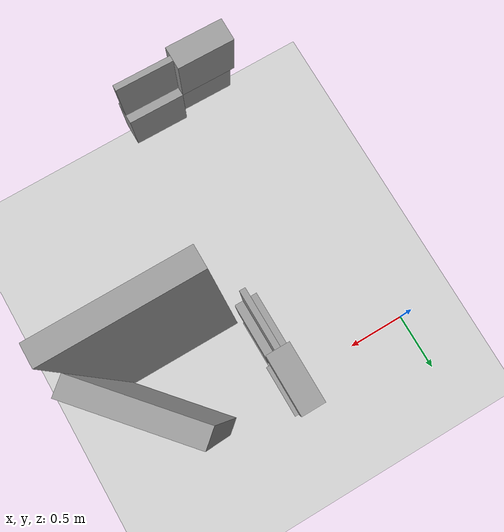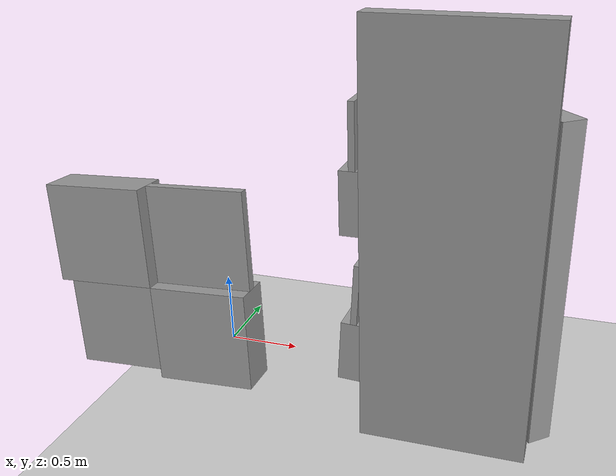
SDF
<sdf version="1.7">
 <world name="default">
  <model name="demo_clean">
   <static>1</static>
   <link name="Wall_21_clone_0_clone_0_clone_clone_clone_clone">
    <gravity>0</gravity>
    <collision name="Wall_21_Collision">
     <geometry><box><size>0.924919 0.15 1.96033</size></box></geometry>
     <pose>0 0 1.25 0 -0 0</pose>
     <surface>
      <friction>
       <ode><mu>1</mu><mu2>1</mu2><fdir1>0 0 0</fdir1><slip1>0</slip1><slip2>0</slip2></ode>
       <torsional>
        <coefficient>1</coefficient>
        <patch_radius>0</patch_radius>
        <surface_radius>0</surface_radius>
        <use_patch_radius>1</use_patch_radius>
        <ode><slip>0</slip></ode>
       </torsional>
      </friction>
      <bounce><restitution_coefficient>0</restitution_coefficient><threshold>1e+06</threshold></bounce>
      <contact>
       <collide_without_contact>0</collide_without_contact>
       <collide_without_contact_bitmask>1</collide_without_contact_bitmask>
       <collide_bitmask>1</collide_bitmask>
       <ode>
        <soft_cfm>0</soft_cfm>
        <soft_erp>0.2</soft_erp>
        <kp>1e+13</kp>
        <kd>1</kd>
        <max_vel>0.01</max_vel>
        <min_depth>0</min_depth>
       </ode>
       <bullet>
        <split_impulse>1</split_impulse>
        <split_impulse_penetration_threshold>-0.01</split_impulse_penetration_threshold>
        <soft_cfm>0</soft_cfm>
        <soft_erp>0.2</soft_erp>
        <kp>1e+13</kp>
        <kd>1</kd>
       </bullet>
      </contact>
     </surface>
    </collision>
    <visual name="Wall_21_Visual">
     <geometry><box><size>0.924919 0.15 1.96033</size></box></geometry>
     <material>
      <script><name>Gazebo/Grey</name><uri>file://media/materials/scripts/gazebo.material</uri></script>
      <ambient>1 1 1 1</ambient>
      <shader type="pixel"><normal_map>__default__</normal_map></shader>
      <diffuse>0.7 0.7 0.7 1</diffuse>
      <specular>0.01 0.01 0.01 1</specular>
      <emissive>0 0 0 1</emissive>
     </material>
     <pose>0 0 1.25 0 -0 0</pose>
    </visual>
    <inertial>
     <inertia><ixx>0</ixx><iyy>0</iyy><izz>0</izz><ixy>0</ixy><ixz>0</ixz><iyz>0</iyz></inertia>
     <mass>1</mass>
    </inertial>
    <pose>2.0073 -0.280742 -0.23202 0 -0 2.28452</pose>
   </link>
   <link name="Wall_28">
    <collision name="Wall_28_Collision">
     <geometry><box><size>1 0.15 2.5</size></box></geometry>
     <pose>0 0 1.25 0 -0 0</pose>
     <surface>
      <friction>
       <ode><mu>1</mu><mu2>1</mu2><fdir1>0 0 0</fdir1><slip1>0</slip1><slip2>0</slip2></ode>
       <torsional>
        <coefficient>1</coefficient>
        <patch_radius>0</patch_radius>
        <surface_radius>0</surface_radius>
        <use_patch_radius>1</use_patch_radius>
        <ode><slip>0</slip></ode>
       </torsional>
      </friction>
      <bounce><restitution_coefficient>0</restitution_coefficient><threshold>1e+06</threshold></bounce>
      <contact>
       <collide_without_contact>0</collide_without_contact>
       <collide_without_contact_bitmask>1</collide_without_contact_bitmask>
       <collide_bitmask>1</collide_bitmask>
       <ode>
        <soft_cfm>0</soft_cfm>
        <soft_erp>0.2</soft_erp>
        <kp>1e+13</kp>
        <kd>1</kd>
        <max_vel>0.01</max_vel>
        <min_depth>0</min_depth>
       </ode>
       <bullet>
        <split_impulse>1</split_impulse>
        <split_impulse_penetration_threshold>-0.01</split_impulse_penetration_threshold>
        <soft_cfm>0</soft_cfm>
        <soft_erp>0.2</soft_erp>
        <kp>1e+13</kp>
        <kd>1</kd>
       </bullet>
      </contact>
     </surface>
    </collision>
    <visual name="Wall_28_Visual">
     <geometry><box><size>1 0.15 2.5</size></box></geometry>
     <material>
      <script><name>Gazebo/Grey</name><uri>file://media/materials/scripts/gazebo.material</uri></script>
      <ambient>1 1 1 1</ambient>
      <shader type="pixel"><normal_map>default</normal_map></shader>
     </material>
     <pose>0 0 1.25 0 -0 0</pose>
    </visual>
    <pose>1.74215 -0.745235 0 0 -0 0</pose>
   </link>
  </model>
  <model name="ground_plane">
   <static>1</static>
   <link name="link">
    <collision name="collision">
     <geometry><plane><normal>0 0 1</normal><size>100 100</size></plane></geometry>
     <surface>
      <contact><collide_bitmask>65535</collide_bitmask></contact>
      <friction><ode><mu>100</mu><mu2>50</mu2></ode></friction>
     </surface>
    </collision>
    <visual name="visual">
     <cast_shadows>0</cast_shadows>
     <geometry><plane><normal>0 0 1</normal><size>100 100</size></plane></geometry>
     <material>
      <script><uri>file://media/materials/scripts/gazebo.material</uri><name>Gazebo/Grey</name></script>
     </material>
    </visual>
   </link>
  </model>
  <model name="wall_slate_74">
   <static>1</static>
   <link name="link_0">
    <inertial><mass>1</mass></inertial>
    <gravity>0</gravity>
    <visual name="visual">
     <pose>0 0.2 0.2 0 -0 0</pose>
     <geometry><box><size>0.16 0.4 0.4</size></box></geometry>
     <material>
      <lighting>1</lighting>
      <script><uri>file://media/materials/scripts/gazebo.material</uri><name>Gazebo/Grey</name></script>
      <shader type="pixel"><normal_map>__default__</normal_map></shader>
      <ambient>0.3 0.3 0.3 1</ambient>
      <diffuse>0.7 0.7 0.7 1</diffuse>
      <specular>0.01 0.01 0.01 1</specular>
      <emissive>0 0 0 1</emissive>
     </material>
    </visual>
    <visual name="ModelPreview_0::link_0::visual_1">
     <pose>0 0.2 -0.2 0 -0 0</pose>
     <geometry><box><size>0.04 0.4 0.4</size></box></geometry>
     <material>
      <lighting>1</lighting>
      <script><uri>file://media/materials/scripts/gazebo.material</uri><name>Gazebo/Grey</name></script>
      <shader type="pixel"><normal_map>__default__</normal_map></shader>
      <ambient>0.3 0.3 0.3 1</ambient>
      <diffuse>0.7 0.7 0.7 1</diffuse>
      <specular>0.01 0.01 0.01 1</specular>
      <emissive>0 0 0 1</emissive>
     </material>
    </visual>
    <visual name="ModelPreview_0::link_0::visual_2">
     <pose>0 -0.2 0.2 0 -0 0</pose>
     <geometry><box><size>0.04 0.4 0.4</size></box></geometry>
     <material>
      <lighting>1</lighting>
      <script><uri>file://media/materials/scripts/gazebo.material</uri><name>Gazebo/Grey</name></script>
      <shader type="pixel"><normal_map>__default__</normal_map></shader>
      <ambient>0.3 0.3 0.3 1</ambient>
      <diffuse>0.7 0.7 0.7 1</diffuse>
      <specular>0.01 0.01 0.01 1</specular>
      <emissive>0 0 0 1</emissive>
     </material>
    </visual>
    <visual name="ModelPreview_0::link_0::visual_3">
     <pose>0 -0.2 -0.2 0 -0 0</pose>
     <geometry><box><size>0.16 0.4 0.4</size></box></geometry>
     <material>
      <lighting>1</lighting>
      <script><uri>file://media/materials/scripts/gazebo.material</uri><name>Gazebo/Grey</name></script>
      <shader type="pixel"><normal_map>__default__</normal_map></shader>
      <ambient>0.3 0.3 0.3 1</ambient>
      <diffuse>0.7 0.7 0.7 1</diffuse>
      <specular>0.01 0.01 0.01 1</specular>
      <emissive>0 0 0 1</emissive>
     </material>
    </visual>
    <collision name="collision_2">
     <pose>0 -0.2 0.2 0 -0 0</pose>
     <geometry><box><size>0.04 0.4 0.4</size></box></geometry>
     <surface>
      <friction>
       <ode><mu>1</mu><mu2>1</mu2><fdir1>0 0 0</fdir1><slip1>0</slip1><slip2>0</slip2></ode>
       <torsional>
        <coefficient>1</coefficient>
        <patch_radius>0</patch_radius>
        <surface_radius>0</surface_radius>
        <use_patch_radius>1</use_patch_radius>
        <ode><slip>0</slip></ode>
       </torsional>
      </friction>
      <bounce><restitution_coefficient>0</restitution_coefficient><threshold>1e+06</threshold></bounce>
      <contact>
       <collide_without_contact>0</collide_without_contact>
       <collide_without_contact_bitmask>1</collide_without_contact_bitmask>
       <collide_bitmask>1</collide_bitmask>
       <ode>
        <soft_cfm>0</soft_cfm>
        <soft_erp>0.2</soft_erp>
        <kp>1e+13</kp>
        <kd>1</kd>
        <max_vel>0.01</max_vel>
        <min_depth>0</min_depth>
       </ode>
       <bullet>
        <split_impulse>1</split_impulse>
        <split_impulse_penetration_threshold>-0.01</split_impulse_penetration_threshold>
        <soft_cfm>0</soft_cfm>
        <soft_erp>0.2</soft_erp>
        <kp>1e+13</kp>
        <kd>1</kd>
       </bullet>
      </contact>
     </surface>
    </collision>
    <collision name="collision_1">
     <pose>0 0.2 -0.2 0 -0 0</pose>
     <geometry><box><size>0.04 0.4 0.4</size></box></geometry>
     <surface>
      <friction>
       <ode><mu>1</mu><mu2>1</mu2><fdir1>0 0 0</fdir1><slip1>0</slip1><slip2>0</slip2></ode>
       <torsional>
        <coefficient>1</coefficient>
        <patch_radius>0</patch_radius>
        <surface_radius>0</surface_radius>
        <use_patch_radius>1</use_patch_radius>
        <ode><slip>0</slip></ode>
       </torsional>
      </friction>
      <bounce><restitution_coefficient>0</restitution_coefficient><threshold>1e+06</threshold></bounce>
      <contact>
       <collide_without_contact>0</collide_without_contact>
       <collide_without_contact_bitmask>1</collide_without_contact_bitmask>
       <collide_bitmask>1</collide_bitmask>
       <ode>
        <soft_cfm>0</soft_cfm>
        <soft_erp>0.2</soft_erp>
        <kp>1e+13</kp>
        <kd>1</kd>
        <max_vel>0.01</max_vel>
        <min_depth>0</min_depth>
       </ode>
       <bullet>
        <split_impulse>1</split_impulse>
        <split_impulse_penetration_threshold>-0.01</split_impulse_penetration_threshold>
        <soft_cfm>0</soft_cfm>
        <soft_erp>0.2</soft_erp>
        <kp>1e+13</kp>
        <kd>1</kd>
       </bullet>
      </contact>
     </surface>
    </collision>
    <collision name="collision_4">
     <pose>0 0.2 0.2 0 -0 0</pose>
     <geometry><box><size>0.16 0.4 0.4</size></box></geometry>
     <surface>
      <friction>
       <ode><mu>1</mu><mu2>1</mu2><fdir1>0 0 0</fdir1><slip1>0</slip1><slip2>0</slip2></ode>
       <torsional>
        <coefficient>1</coefficient>
        <patch_radius>0</patch_radius>
        <surface_radius>0</surface_radius>
        <use_patch_radius>1</use_patch_radius>
        <ode><slip>0</slip></ode>
       </torsional>
      </friction>
      <bounce><restitution_coefficient>0</restitution_coefficient><threshold>1e+06</threshold></bounce>
      <contact>
       <collide_without_contact>0</collide_without_contact>
       <collide_without_contact_bitmask>1</collide_without_contact_bitmask>
       <collide_bitmask>1</collide_bitmask>
       <ode>
        <soft_cfm>0</soft_cfm>
        <soft_erp>0.2</soft_erp>
        <kp>1e+13</kp>
        <kd>1</kd>
        <max_vel>0.01</max_vel>
        <min_depth>0</min_depth>
       </ode>
       <bullet>
        <split_impulse>1</split_impulse>
        <split_impulse_penetration_threshold>-0.01</split_impulse_penetration_threshold>
        <soft_cfm>0</soft_cfm>
        <soft_erp>0.2</soft_erp>
        <kp>1e+13</kp>
        <kd>1</kd>
       </bullet>
      </contact>
     </surface>
    </collision>
    <collision name="collision_3">
     <pose>0 -0.2 -0.2 0 -0 0</pose>
     <geometry><box><size>0.16 0.4 0.4</size></box></geometry>
     <surface>
      <friction>
       <ode><mu>1</mu><mu2>1</mu2><fdir1>0 0 0</fdir1><slip1>0</slip1><slip2>0</slip2></ode>
       <torsional>
        <coefficient>1</coefficient>
        <patch_radius>0</patch_radius>
        <surface_radius>0</surface_radius>
        <use_patch_radius>1</use_patch_radius>
        <ode><slip>0</slip></ode>
       </torsional>
      </friction>
      <bounce><restitution_coefficient>0</restitution_coefficient><threshold>1e+06</threshold></bounce>
      <contact>
       <collide_without_contact>0</collide_without_contact>
       <collide_without_contact_bitmask>1</collide_without_contact_bitmask>
       <collide_bitmask>1</collide_bitmask>
       <ode>
        <soft_cfm>0</soft_cfm>
        <soft_erp>0.2</soft_erp>
        <kp>1e+13</kp>
        <kd>1</kd>
        <max_vel>0.01</max_vel>
        <min_depth>0</min_depth>
       </ode>
       <bullet>
        <split_impulse>1</split_impulse>
        <split_impulse_penetration_threshold>-0.01</split_impulse_penetration_threshold>
        <soft_cfm>0</soft_cfm>
        <soft_erp>0.2</soft_erp>
        <kp>1e+13</kp>
        <kd>1</kd>
       </bullet>
      </contact>
     </surface>
    </collision>
   </link>
   <pose>1.12516 -0.172895 1.6 0 -0 0.0049</pose>
  </model>
  <model name="wall_slate_85">
   <static>1</static>
   <link name="link_0">
    <inertial><mass>1</mass></inertial>
    <gravity>0</gravity>
    <visual name="visual">
     <pose>0 0.2 0.2 0 -0 0</pose>
     <geometry><box><size>0.16 0.4 0.4</size></box></geometry>
     <material>
      <lighting>1</lighting>
      <script><uri>file://media/materials/scripts/gazebo.material</uri><name>Gazebo/Grey</name></script>
      <shader type="pixel"><normal_map>__default__</normal_map></shader>
      <ambient>0.3 0.3 0.3 1</ambient>
      <diffuse>0.7 0.7 0.7 1</diffuse>
      <specular>0.01 0.01 0.01 1</specular>
      <emissive>0 0 0 1</emissive>
     </material>
    </visual>
    <visual name="ModelPreview_0::link_0::visual_1">
     <pose>0 0.2 -0.2 0 -0 0</pose>
     <geometry><box><size>0.04 0.4 0.4</size></box></geometry>
     <material>
      <lighting>1</lighting>
      <script><uri>file://media/materials/scripts/gazebo.material</uri><name>Gazebo/Grey</name></script>
      <shader type="pixel"><normal_map>__default__</normal_map></shader>
      <ambient>0.3 0.3 0.3 1</ambient>
      <diffuse>0.7 0.7 0.7 1</diffuse>
      <specular>0.01 0.01 0.01 1</specular>
      <emissive>0 0 0 1</emissive>
     </material>
    </visual>
    <visual name="ModelPreview_0::link_0::visual_2">
     <pose>0 -0.2 0.2 0 -0 0</pose>
     <geometry><box><size>0.04 0.4 0.4</size></box></geometry>
     <material>
      <lighting>1</lighting>
      <script><uri>file://media/materials/scripts/gazebo.material</uri><name>Gazebo/Grey</name></script>
      <shader type="pixel"><normal_map>__default__</normal_map></shader>
      <ambient>0.3 0.3 0.3 1</ambient>
      <diffuse>0.7 0.7 0.7 1</diffuse>
      <specular>0.01 0.01 0.01 1</specular>
      <emissive>0 0 0 1</emissive>
     </material>
    </visual>
    <visual name="ModelPreview_0::link_0::visual_3">
     <pose>0 -0.2 -0.2 0 -0 0</pose>
     <geometry><box><size>0.16 0.4 0.4</size></box></geometry>
     <material>
      <lighting>1</lighting>
      <script><uri>file://media/materials/scripts/gazebo.material</uri><name>Gazebo/Grey</name></script>
      <shader type="pixel"><normal_map>__default__</normal_map></shader>
      <ambient>0.3 0.3 0.3 1</ambient>
      <diffuse>0.7 0.7 0.7 1</diffuse>
      <specular>0.01 0.01 0.01 1</specular>
      <emissive>0 0 0 1</emissive>
     </material>
    </visual>
    <collision name="collision_2">
     <pose>0 -0.2 0.2 0 -0 0</pose>
     <geometry><box><size>0.04 0.4 0.4</size></box></geometry>
     <surface>
      <friction>
       <ode><mu>1</mu><mu2>1</mu2><fdir1>0 0 0</fdir1><slip1>0</slip1><slip2>0</slip2></ode>
       <torsional>
        <coefficient>1</coefficient>
        <patch_radius>0</patch_radius>
        <surface_radius>0</surface_radius>
        <use_patch_radius>1</use_patch_radius>
        <ode><slip>0</slip></ode>
       </torsional>
      </friction>
      <bounce><restitution_coefficient>0</restitution_coefficient><threshold>1e+06</threshold></bounce>
      <contact>
       <collide_without_contact>0</collide_without_contact>
       <collide_without_contact_bitmask>1</collide_without_contact_bitmask>
       <collide_bitmask>1</collide_bitmask>
       <ode>
        <soft_cfm>0</soft_cfm>
        <soft_erp>0.2</soft_erp>
        <kp>1e+13</kp>
        <kd>1</kd>
        <max_vel>0.01</max_vel>
        <min_depth>0</min_depth>
       </ode>
       <bullet>
        <split_impulse>1</split_impulse>
        <split_impulse_penetration_threshold>-0.01</split_impulse_penetration_threshold>
        <soft_cfm>0</soft_cfm>
        <soft_erp>0.2</soft_erp>
        <kp>1e+13</kp>
        <kd>1</kd>
       </bullet>
      </contact>
     </surface>
    </collision>
    <collision name="collision_1">
     <pose>0 0.2 -0.2 0 -0 0</pose>
     <geometry><box><size>0.04 0.4 0.4</size></box></geometry>
     <surface>
      <friction>
       <ode><mu>1</mu><mu2>1</mu2><fdir1>0 0 0</fdir1><slip1>0</slip1><slip2>0</slip2></ode>
       <torsional>
        <coefficient>1</coefficient>
        <patch_radius>0</patch_radius>
        <surface_radius>0</surface_radius>
        <use_patch_radius>1</use_patch_radius>
        <ode><slip>0</slip></ode>
       </torsional>
      </friction>
      <bounce><restitution_coefficient>0</restitution_coefficient><threshold>1e+06</threshold></bounce>
      <contact>
       <collide_without_contact>0</collide_without_contact>
       <collide_without_contact_bitmask>1</collide_without_contact_bitmask>
       <collide_bitmask>1</collide_bitmask>
       <ode>
        <soft_cfm>0</soft_cfm>
        <soft_erp>0.2</soft_erp>
        <kp>1e+13</kp>
        <kd>1</kd>
        <max_vel>0.01</max_vel>
        <min_depth>0</min_depth>
       </ode>
       <bullet>
        <split_impulse>1</split_impulse>
        <split_impulse_penetration_threshold>-0.01</split_impulse_penetration_threshold>
        <soft_cfm>0</soft_cfm>
        <soft_erp>0.2</soft_erp>
        <kp>1e+13</kp>
        <kd>1</kd>
       </bullet>
      </contact>
     </surface>
    </collision>
    <collision name="collision_4">
     <pose>0 0.2 0.2 0 -0 0</pose>
     <geometry><box><size>0.16 0.4 0.4</size></box></geometry>
     <surface>
      <friction>
       <ode><mu>1</mu><mu2>1</mu2><fdir1>0 0 0</fdir1><slip1>0</slip1><slip2>0</slip2></ode>
       <torsional>
        <coefficient>1</coefficient>
        <patch_radius>0</patch_radius>
        <surface_radius>0</surface_radius>
        <use_patch_radius>1</use_patch_radius>
        <ode><slip>0</slip></ode>
       </torsional>
      </friction>
      <bounce><restitution_coefficient>0</restitution_coefficient><threshold>1e+06</threshold></bounce>
      <contact>
       <collide_without_contact>0</collide_without_contact>
       <collide_without_contact_bitmask>1</collide_without_contact_bitmask>
       <collide_bitmask>1</collide_bitmask>
       <ode>
        <soft_cfm>0</soft_cfm>
        <soft_erp>0.2</soft_erp>
        <kp>1e+13</kp>
        <kd>1</kd>
        <max_vel>0.01</max_vel>
        <min_depth>0</min_depth>
       </ode>
       <bullet>
        <split_impulse>1</split_impulse>
        <split_impulse_penetration_threshold>-0.01</split_impulse_penetration_threshold>
        <soft_cfm>0</soft_cfm>
        <soft_erp>0.2</soft_erp>
        <kp>1e+13</kp>
        <kd>1</kd>
       </bullet>
      </contact>
     </surface>
    </collision>
    <collision name="collision_3">
     <pose>0 -0.2 -0.2 0 -0 0</pose>
     <geometry><box><size>0.16 0.4 0.4</size></box></geometry>
     <surface>
      <friction>
       <ode><mu>1</mu><mu2>1</mu2><fdir1>0 0 0</fdir1><slip1>0</slip1><slip2>0</slip2></ode>
       <torsional>
        <coefficient>1</coefficient>
        <patch_radius>0</patch_radius>
        <surface_radius>0</surface_radius>
        <use_patch_radius>1</use_patch_radius>
        <ode><slip>0</slip></ode>
       </torsional>
      </friction>
      <bounce><restitution_coefficient>0</restitution_coefficient><threshold>1e+06</threshold></bounce>
      <contact>
       <collide_without_contact>0</collide_without_contact>
       <collide_without_contact_bitmask>1</collide_without_contact_bitmask>
       <collide_bitmask>1</collide_bitmask>
       <ode>
        <soft_cfm>0</soft_cfm>
        <soft_erp>0.2</soft_erp>
        <kp>1e+13</kp>
        <kd>1</kd>
        <max_vel>0.01</max_vel>
        <min_depth>0</min_depth>
       </ode>
       <bullet>
        <split_impulse>1</split_impulse>
        <split_impulse_penetration_threshold>-0.01</split_impulse_penetration_threshold>
        <soft_cfm>0</soft_cfm>
        <soft_erp>0.2</soft_erp>
        <kp>1e+13</kp>
        <kd>1</kd>
       </bullet>
      </contact>
     </surface>
    </collision>
   </link>
   <pose>0.795923 -2.06788 1.6 -0.04 0.06 1.5757</pose>
  </model>
  <model name="wall_slate_94">
   <static>1</static>
   <link name="link_0">
    <inertial><mass>1</mass></inertial>
    <gravity>0</gravity>
    <visual name="visual">
     <pose>0 0.2 0.2 0 -0 0</pose>
     <geometry><box><size>0.16 0.4 0.4</size></box></geometry>
     <material>
      <lighting>1</lighting>
      <script><uri>file://media/materials/scripts/gazebo.material</uri><name>Gazebo/Grey</name></script>
      <shader type="pixel"><normal_map>__default__</normal_map></shader>
      <ambient>0.3 0.3 0.3 1</ambient>
      <diffuse>0.7 0.7 0.7 1</diffuse>
      <specular>0.01 0.01 0.01 1</specular>
      <emissive>0 0 0 1</emissive>
     </material>
    </visual>
    <visual name="ModelPreview_0::link_0::visual_1">
     <pose>0 0.2 -0.2 0 -0 0</pose>
     <geometry><box><size>0.04 0.4 0.4</size></box></geometry>
     <material>
      <lighting>1</lighting>
      <script><uri>file://media/materials/scripts/gazebo.material</uri><name>Gazebo/Grey</name></script>
      <shader type="pixel"><normal_map>__default__</normal_map></shader>
      <ambient>0.3 0.3 0.3 1</ambient>
      <diffuse>0.7 0.7 0.7 1</diffuse>
      <specular>0.01 0.01 0.01 1</specular>
      <emissive>0 0 0 1</emissive>
     </material>
    </visual>
    <visual name="ModelPreview_0::link_0::visual_2">
     <pose>0 -0.2 0.2 0 -0 0</pose>
     <geometry><box><size>0.04 0.4 0.4</size></box></geometry>
     <material>
      <lighting>1</lighting>
      <script><uri>file://media/materials/scripts/gazebo.material</uri><name>Gazebo/Grey</name></script>
      <shader type="pixel"><normal_map>__default__</normal_map></shader>
      <ambient>0.3 0.3 0.3 1</ambient>
      <diffuse>0.7 0.7 0.7 1</diffuse>
      <specular>0.01 0.01 0.01 1</specular>
      <emissive>0 0 0 1</emissive>
     </material>
    </visual>
    <visual name="ModelPreview_0::link_0::visual_3">
     <pose>0 -0.2 -0.2 0 -0 0</pose>
     <geometry><box><size>0.16 0.4 0.4</size></box></geometry>
     <material>
      <lighting>1</lighting>
      <script><uri>file://media/materials/scripts/gazebo.material</uri><name>Gazebo/Grey</name></script>
      <shader type="pixel"><normal_map>__default__</normal_map></shader>
      <ambient>0.3 0.3 0.3 1</ambient>
      <diffuse>0.7 0.7 0.7 1</diffuse>
      <specular>0.01 0.01 0.01 1</specular>
      <emissive>0 0 0 1</emissive>
     </material>
    </visual>
    <collision name="collision_2">
     <pose>0 -0.2 0.2 0 -0 0</pose>
     <geometry><box><size>0.04 0.4 0.4</size></box></geometry>
     <surface>
      <friction>
       <ode><mu>1</mu><mu2>1</mu2><fdir1>0 0 0</fdir1><slip1>0</slip1><slip2>0</slip2></ode>
       <torsional>
        <coefficient>1</coefficient>
        <patch_radius>0</patch_radius>
        <surface_radius>0</surface_radius>
        <use_patch_radius>1</use_patch_radius>
        <ode><slip>0</slip></ode>
       </torsional>
      </friction>
      <bounce><restitution_coefficient>0</restitution_coefficient><threshold>1e+06</threshold></bounce>
      <contact>
       <collide_without_contact>0</collide_without_contact>
       <collide_without_contact_bitmask>1</collide_without_contact_bitmask>
       <collide_bitmask>1</collide_bitmask>
       <ode>
        <soft_cfm>0</soft_cfm>
        <soft_erp>0.2</soft_erp>
        <kp>1e+13</kp>
        <kd>1</kd>
        <max_vel>0.01</max_vel>
        <min_depth>0</min_depth>
       </ode>
       <bullet>
        <split_impulse>1</split_impulse>
        <split_impulse_penetration_threshold>-0.01</split_impulse_penetration_threshold>
        <soft_cfm>0</soft_cfm>
        <soft_erp>0.2</soft_erp>
        <kp>1e+13</kp>
        <kd>1</kd>
       </bullet>
      </contact>
     </surface>
    </collision>
    <collision name="collision_1">
     <pose>0 0.2 -0.2 0 -0 0</pose>
     <geometry><box><size>0.04 0.4 0.4</size></box></geometry>
     <surface>
      <friction>
       <ode><mu>1</mu><mu2>1</mu2><fdir1>0 0 0</fdir1><slip1>0</slip1><slip2>0</slip2></ode>
       <torsional>
        <coefficient>1</coefficient>
        <patch_radius>0</patch_radius>
        <surface_radius>0</surface_radius>
        <use_patch_radius>1</use_patch_radius>
        <ode><slip>0</slip></ode>
       </torsional>
      </friction>
      <bounce><restitution_coefficient>0</restitution_coefficient><threshold>1e+06</threshold></bounce>
      <contact>
       <collide_without_contact>0</collide_without_contact>
       <collide_without_contact_bitmask>1</collide_without_contact_bitmask>
       <collide_bitmask>1</collide_bitmask>
       <ode>
        <soft_cfm>0</soft_cfm>
        <soft_erp>0.2</soft_erp>
        <kp>1e+13</kp>
        <kd>1</kd>
        <max_vel>0.01</max_vel>
        <min_depth>0</min_depth>
       </ode>
       <bullet>
        <split_impulse>1</split_impulse>
        <split_impulse_penetration_threshold>-0.01</split_impulse_penetration_threshold>
        <soft_cfm>0</soft_cfm>
        <soft_erp>0.2</soft_erp>
        <kp>1e+13</kp>
        <kd>1</kd>
       </bullet>
      </contact>
     </surface>
    </collision>
    <collision name="collision_4">
     <pose>0 0.2 0.2 0 -0 0</pose>
     <geometry><box><size>0.16 0.4 0.4</size></box></geometry>
     <surface>
      <friction>
       <ode><mu>1</mu><mu2>1</mu2><fdir1>0 0 0</fdir1><slip1>0</slip1><slip2>0</slip2></ode>
       <torsional>
        <coefficient>1</coefficient>
        <patch_radius>0</patch_radius>
        <surface_radius>0</surface_radius>
        <use_patch_radius>1</use_patch_radius>
        <ode><slip>0</slip></ode>
       </torsional>
      </friction>
      <bounce><restitution_coefficient>0</restitution_coefficient><threshold>1e+06</threshold></bounce>
      <contact>
       <collide_without_contact>0</collide_without_contact>
       <collide_without_contact_bitmask>1</collide_without_contact_bitmask>
       <collide_bitmask>1</collide_bitmask>
       <ode>
        <soft_cfm>0</soft_cfm>
        <soft_erp>0.2</soft_erp>
        <kp>1e+13</kp>
        <kd>1</kd>
        <max_vel>0.01</max_vel>
        <min_depth>0</min_depth>
       </ode>
       <bullet>
        <split_impulse>1</split_impulse>
        <split_impulse_penetration_threshold>-0.01</split_impulse_penetration_threshold>
        <soft_cfm>0</soft_cfm>
        <soft_erp>0.2</soft_erp>
        <kp>1e+13</kp>
        <kd>1</kd>
       </bullet>
      </contact>
     </surface>
    </collision>
    <collision name="collision_3">
     <pose>0 -0.2 -0.2 0 -0 0</pose>
     <geometry><box><size>0.16 0.4 0.4</size></box></geometry>
     <surface>
      <friction>
       <ode><mu>1</mu><mu2>1</mu2><fdir1>0 0 0</fdir1><slip1>0</slip1><slip2>0</slip2></ode>
       <torsional>
        <coefficient>1</coefficient>
        <patch_radius>0</patch_radius>
        <surface_radius>0</surface_radius>
        <use_patch_radius>1</use_patch_radius>
        <ode><slip>0</slip></ode>
       </torsional>
      </friction>
      <bounce><restitution_coefficient>0</restitution_coefficient><threshold>1e+06</threshold></bounce>
      <contact>
       <collide_without_contact>0</collide_without_contact>
       <collide_without_contact_bitmask>1</collide_without_contact_bitmask>
       <collide_bitmask>1</collide_bitmask>
       <ode>
        <soft_cfm>0</soft_cfm>
        <soft_erp>0.2</soft_erp>
        <kp>1e+13</kp>
        <kd>1</kd>
        <max_vel>0.01</max_vel>
        <min_depth>0</min_depth>
       </ode>
       <bullet>
        <split_impulse>1</split_impulse>
        <split_impulse_penetration_threshold>-0.01</split_impulse_penetration_threshold>
        <soft_cfm>0</soft_cfm>
        <soft_erp>0.2</soft_erp>
        <kp>1e+13</kp>
        <kd>1</kd>
       </bullet>
      </contact>
     </surface>
    </collision>
   </link>
   <pose>1.12516 -0.172895 0.6 -0.02 0.06 0.0049</pose>
  </model>
 </world>
</sdf>
